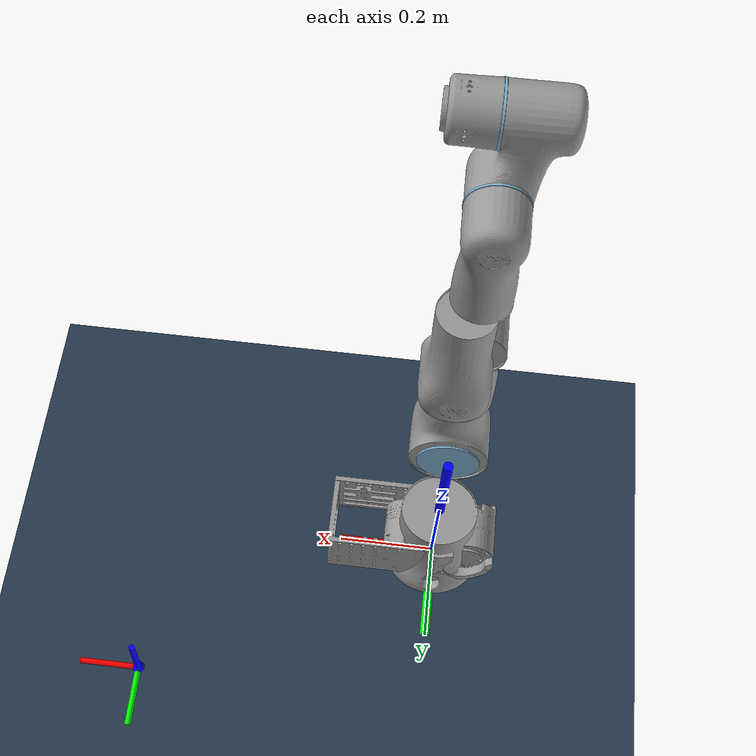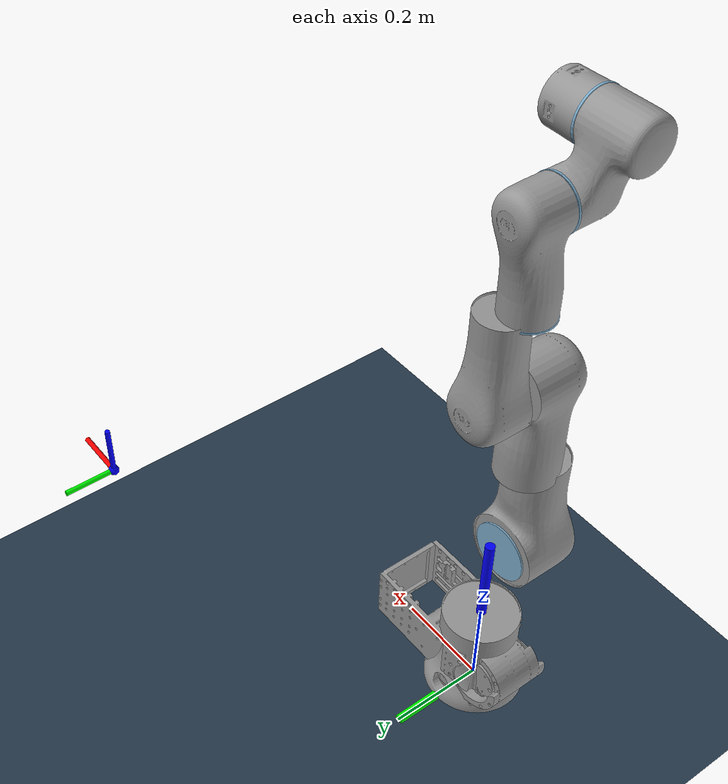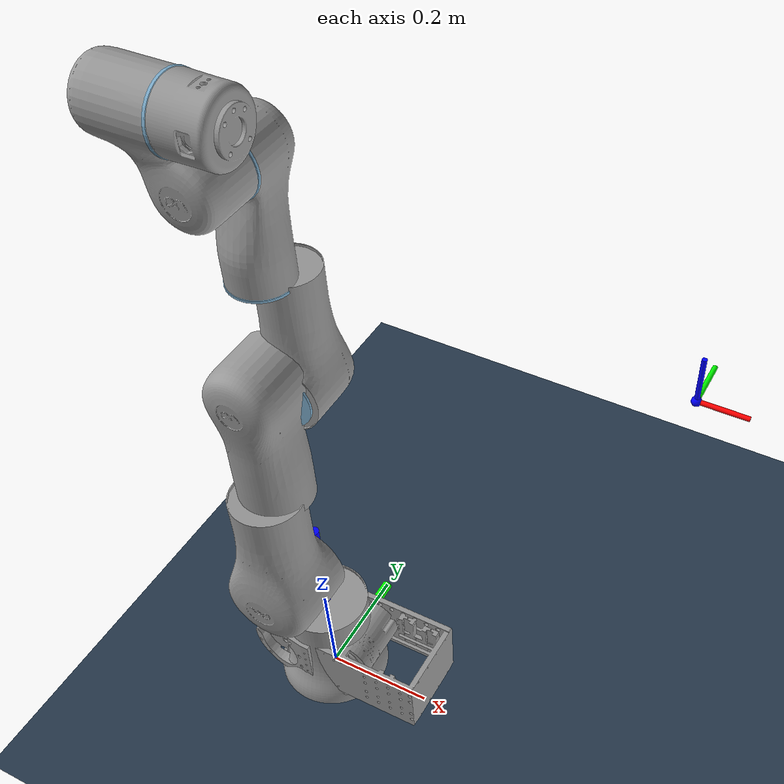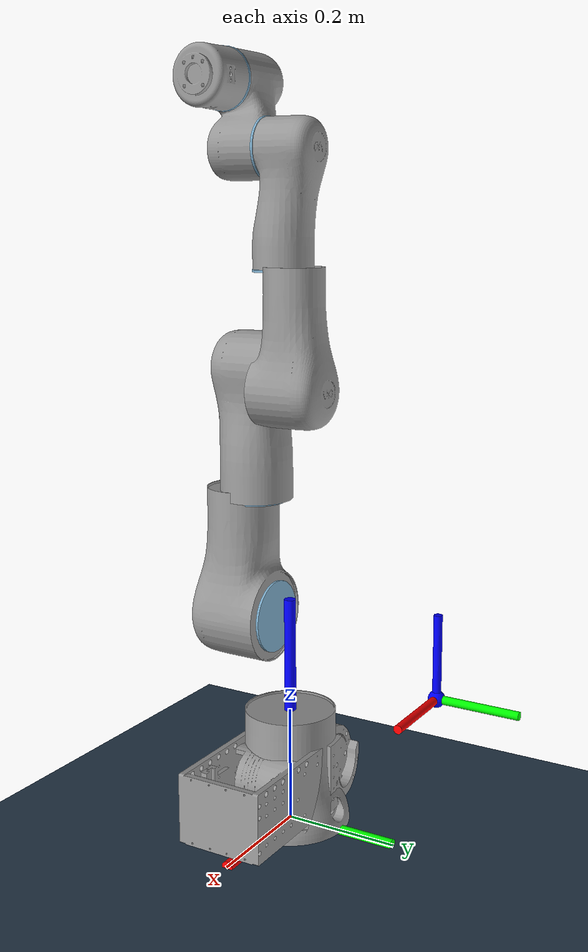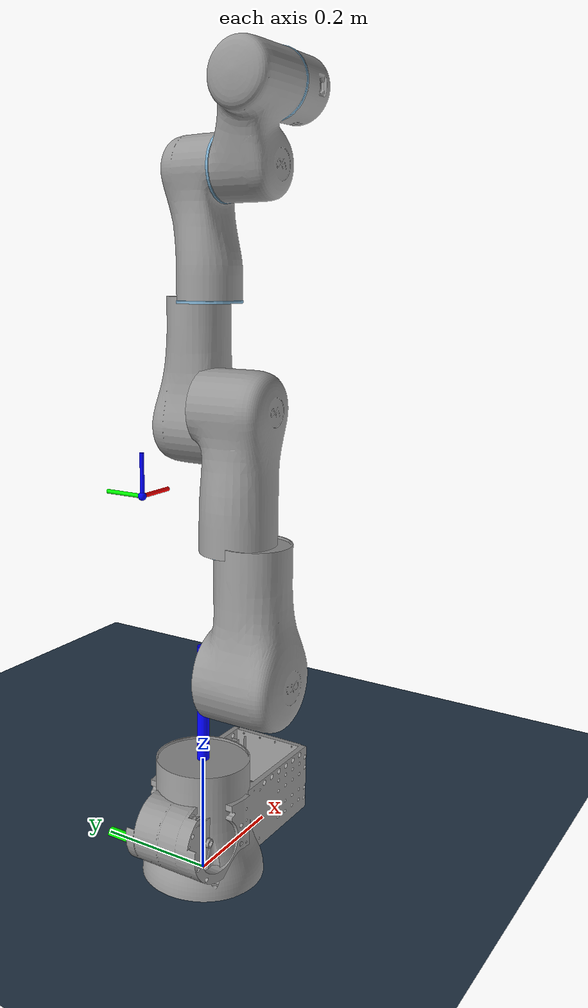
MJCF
<mujoco model="flexiv_rizon4s_scene">
  <include file="flexiv_Rizon4s.xml"/>

  <statistic center="0.3 0 0.3" extent="1.0" meansize="0.08"/>

  <visual>
    <headlight diffuse="0.6 0.6 0.6" ambient="0.1 0.1 0.1" specular="0 0 0"/>
    <global azimuth="120" elevation="-20"/>
  </visual>

  <asset>
    <texture name="grid" type="2d" builtin="checker" rgb1=".2 .3 .4" rgb2=".1 0.15 0.2" width="512" height="512"
      mark="cross" markrgb=".8 .8 .8"/>
    <material name="grid" texture="grid" texrepeat="1 1" texuniform="true"/>
  </asset>

  <worldbody>
    <light pos="0 0 1.5" directional="true"/>
    <geom name="floor" size="1 1 0.01" type="plane" material="grid"/>
    <body name="target" pos="0.5 0.5 .5" quat="1 0 0 0" mocap="true">
      <!-- X-axis arrow shaft -->
      <geom name="target_x_shaft" type="cylinder" size="0.005 0.05" pos="0.05 0 0" zaxis="1 0 0" rgba="1 0 0 1" contype="0" conaffinity="0" group="1"/>
      <!-- Y-axis arrow shaft -->
      <geom name="target_y_shaft" type="cylinder" size="0.005 0.05" pos="0 0.05 0" zaxis="0 1 0" rgba="0 1 0 1" contype="0" conaffinity="0" group="1"/>
      <!-- Z-axis arrow shaft -->
      <geom name="target_z_shaft" type="cylinder" size="0.005 0.05" pos="0 0 0.05" zaxis="0 0 1" rgba="0 0 1 1" contype="0" conaffinity="0" group="1"/>
      <site type="sphere" size="0.01" rgba="0 0 1 1" group="1"/>
    </body>
    <!-- X-axis arrow shaft -->
    <geom name="world_x_shaft" type="cylinder" size="0.01 0.1" pos="0.1 0 0.0" zaxis="1 0 0" rgba="1 0 0 1" contype="0" conaffinity="0" group="1"/>
    <!-- Y-axis arrow shaft -->
    <geom name="world_y_shaft" type="cylinder" size="0.01 0.1" pos="0 0.1 0.0" zaxis="0 1 0" rgba="0 1 0 1" contype="0" conaffinity="0" group="1"/>
    <!-- Z-axis arrow shaft -->
    <geom name="world_z_shaft" type="cylinder" size="0.01 0.2" pos="0 0 0.2" zaxis="0 0 1" rgba="0 0 1 1" contype="0" conaffinity="0" group="1"/>
  </worldbody>
</mujoco>

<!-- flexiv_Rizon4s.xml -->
<mujoco model="Rizon4s">
  <option iterations="50" timestep="0.001" solver="PGS" gravity="0 0 -9.81" />

  <compiler angle="radian" meshdir="meshes/Rizon4s" eulerseq="zyx" autolimits="true" />

  <default>
    <joint limited="true" damping="0.01" armature="0.01" frictionloss="0.01" />
    <geom condim="4" contype="1" conaffinity="15" friction="0.9 0.2 0.2" solref="0.001 2" />
    <motor ctrllimited="true" />
    <equality solref="0.001 2" />
    <default class="visualgeom">
      <geom material="visualgeom" condim="1" contype="0" conaffinity="0" />
    </default>
  </default>

  <asset>
    <mesh name="link0_visual" file="visual/link0.obj" />
    <mesh name="link1_visual" file="visual/link1.obj" />
    <mesh name="link2_visual" file="visual/link2.obj" />
    <mesh name="link3_visual" file="visual/link3.obj" />
    <mesh name="link4_visual" file="visual/link4.obj" />
    <mesh name="link5_visual" file="visual/link5.obj" />
    <mesh name="link6_visual" file="visual/link6.obj" />
    <mesh name="link7_visual" file="visual/link7.obj" />
    <mesh name="ring_visual_062" file="visual/ring.obj" scale="0.062 0.062 0.002" />
    <mesh name="ring_visual_051" file="visual/ring.obj" scale="0.051 0.051 0.002" />
    <mesh name="link0_collision" file="collision/link0.stl" />
    <mesh name="link1_collision" file="collision/link1.stl" />
    <mesh name="link2_collision" file="collision/link2.stl" />
    <mesh name="link3_collision" file="collision/link3.stl" />
    <mesh name="link4_collision" file="collision/link4.stl" />
    <mesh name="link5_collision" file="collision/link5.stl" />
    <mesh name="link6_collision" file="collision/link6.stl" />
    <mesh name="link7_collision" file="collision/link7.stl" />
    <texture name="texplane" type="2d" builtin="checker" rgb1=".0 .0 .0" rgb2=".8 .8 .8" width="100" height="100" />
    <material name="matplane" reflectance="0." texture="texplane" texrepeat="1 1" texuniform="true" />
    <material name="visualgeom" rgba="0.6 0.6 0.6 1"/>
    <material name="ring_material" rgba="0.49 0.678 0.8 1"/>
  </asset>

  <worldbody>
    <light directional="true" diffuse="0.4 0.4 0.4" specular="0.1 0.1 0.1" pos="0 0 5.0" dir="0 0 -1" castshadow="false" />
    <light directional="true" diffuse="0.6 0.6 0.6" specular="0.2 0.2 0.2" pos="0 0 4" dir="0 0 -1" />
    <camera name="fixed" pos="0 -3.0 0.517318010072385" xyaxes="1 0 0 0 0 1" />
    <body name="root" pos="0 0 0" quat="1 0 0 0">
      <site name="imu" size="0.01" pos="0 0 0" />
      <geom type="mesh" mesh="link0_visual" class="visualgeom" />
      <geom type="mesh" mesh="link0_collision" rgba="0 0 0 0" />
      <body name="link1" pos="0 0 0.155" quat="0 0 0 -1">
        <inertial pos="0 0 0.15" mass="3.6" diaginertia="0.03 0.03 0.01" />
        <joint name="joint1" pos="0 0 0" axis="0 0 1" range="-2.8798 2.8798" actuatorfrcrange="-123 123" />
        <geom type="mesh" mesh="link1_visual" class="visualgeom" />
        <geom type="mesh" mesh="ring_visual_062" class="visualgeom" pos="0 0 -0.0025" material="ring_material"/>
        <geom type="mesh" mesh="link1_collision" rgba="0 0 0 0" />
        <body name="link2" pos="0 0.03 0.21">
          <inertial pos="0 0.04 0.1" mass="2.7" diaginertia="0.02 0.02 0.01" />
          <joint name="joint2" pos="0 0 0" axis="0 1 0" range="-2.3562 2.3562" actuatorfrcrange="-123 123" />
          <geom type="mesh" mesh="link2_visual" class="visualgeom" />
          <geom type="mesh" mesh="ring_visual_062" class="visualgeom" pos="0 -0.0025 0" quat="0.7071068 0.7071068 0 0" material="ring_material"/>
          <geom type="mesh" mesh="link2_collision" rgba="0 0 0 0" />
          <body name="link3" pos="0 0.035 0.205">
            <inertial pos="-0.01 0 0.14" mass="2.4" diaginertia="0.01 0.01 0.01" />
            <joint name="joint3" pos="0 0 0" axis="0 0 1" range="-3.0543 3.0543" actuatorfrcrange="-64 64" />
            <geom type="mesh" mesh="link3_visual" class="visualgeom" />
            <geom type="mesh" mesh="ring_visual_051" class="visualgeom" pos="0 0 -0.0025" material="ring_material"/>
            <geom type="mesh" mesh="link3_collision" rgba="0 0 0 0" />
            <body name="link4" pos="-0.02 -0.03 0.19" quat="0 0 0 -1">
              <inertial pos="-0.01 0.03 0.1" mass="2.4" diaginertia="0.02 0.02 0.01" />
              <joint name="joint4" pos="0 0 0" axis="0 1 0" range="-1.9548 2.7751" actuatorfrcrange="-64 64" />
              <geom type="mesh" mesh="link4_visual" class="visualgeom" />
              <geom type="mesh" mesh="ring_visual_051" class="visualgeom" pos="0 -0.0025 0" quat="0.7071068 0.7071068 0 0" material="ring_material"/>
              <geom type="mesh" mesh="link4_collision" rgba="0 0 0 0" />
              <body name="link5" pos="-0.02 0.025 0.195" quat="0 0 0 -1">
                <inertial pos="0 0 0.14" mass="2.3" diaginertia="0.01 0.01 0.01" />
                <joint name="joint5" pos="0 0 0" axis="0 0 1" range="-3.0543 3.0543" actuatorfrcrange="-39 39" />
                <geom type="mesh" mesh="link5_visual" class="visualgeom" />
                <geom type="mesh" mesh="ring_visual_051" class="visualgeom" pos="0 0 -0.0025" material="ring_material"/>
                <geom type="mesh" mesh="link5_collision" rgba="0 0 0 0" />
                <body name="link6" pos="0 0.03 0.19">
                  <inertial pos="0.02 0.06 0.07" mass="2.2" diaginertia="0.01 0.01 0.01" />
                  <joint name="joint6" pos="0 0 0" axis="0 1 0" range="-1.4835 4.6251" actuatorfrcrange="-39 39" />
                  <geom type="mesh" mesh="link6_visual" class="visualgeom" />
                  <geom type="mesh" mesh="ring_visual_051" class="visualgeom" pos="0 -0.0025 0" quat="0.7071068 0.7071068 0 0" material="ring_material"/>
                  <geom type="mesh" mesh="link6_collision" rgba="0 0 0 0" />
                  <body name="link7" pos="-0.015 0.073 0.11" quat="0.707107 0 -0.707107 0">
                    <inertial pos="0 0 0.0505248" mass="1.41" diaginertia="0.0200544 0.0200544 0.02" />
                    <joint name="joint7" pos="0 0 0" axis="0 0 1" range="-3.0543 3.0543" actuatorfrcrange="-39 39" />
                    <geom type="mesh" mesh="link7_visual" class="visualgeom" />
                    <geom type="mesh" mesh="ring_visual_051" class="visualgeom" pos="0 0 -0.0025" material="ring_material"/>
                    <geom type="mesh" mesh="link7_collision" rgba="0 0 0 0" />
                    <body name="flange" pos="0 0 0.124" quat="0 0 0 -1">
                      <inertial mass="0.0" pos="0 0 0" diaginertia="0 0 0" />
                    </body>
                  </body>
                </body>
              </body>
            </body>
          </body>
        </body>
      </body>
    </body>
  </worldbody>

  <keyframe>
    <key name="home" qpos="0 0 0 0 0 0 0" />
  </keyframe>

  <actuator>
    <position name="joint1" joint="joint1" forcerange="-123 123" kp="2500" kv="100" ctrlrange="-2.8798 2.8798"/>
    <position name="joint2" joint="joint2" forcerange="-123 123" kp="2500" kv="100" ctrlrange="-2.3562 2.3562"/>
    <position name="joint3" joint="joint3" forcerange="-64 64" kp="2500" kv="100" ctrlrange="-3.0543 3.0543"/>
    <position name="joint4" joint="joint4" forcerange="-64 64" kp="2500" kv="100" ctrlrange="-1.9548 2.7751"/>
    <position name="joint5" joint="joint5" forcerange="-39 39" kp="500" kv="25" ctrlrange="-3.0543 3.0543"/>
    <position name="joint6" joint="joint6" forcerange="-39 39" kp="500" kv="25" ctrlrange="-1.4835 4.6251"/>
    <position name="joint7" joint="joint7" forcerange="-39 39" kp="500" kv="25" ctrlrange="-3.0543 3.0543"/>
  </actuator>

  <sensor>
    <actuatorpos name="joint1_p" actuator="joint1" />
    <actuatorvel name="joint1_v" actuator="joint1" />
    <actuatorfrc name="joint1_f" actuator="joint1" noise="0.001" />
    <actuatorpos name="joint2_p" actuator="joint2" />
    <actuatorvel name="joint2_v" actuator="joint2" />
    <actuatorfrc name="joint2_f" actuator="joint2" noise="0.001" />
    <actuatorpos name="joint3_p" actuator="joint3" />
    <actuatorvel name="joint3_v" actuator="joint3" />
    <actuatorfrc name="joint3_f" actuator="joint3" noise="0.001" />
    <actuatorpos name="joint4_p" actuator="joint4" />
    <actuatorvel name="joint4_v" actuator="joint4" />
    <actuatorfrc name="joint4_f" actuator="joint4" noise="0.001" />
    <actuatorpos name="joint5_p" actuator="joint5" />
    <actuatorvel name="joint5_v" actuator="joint5" />
    <actuatorfrc name="joint5_f" actuator="joint5" noise="0.001" />
    <actuatorpos name="joint6_p" actuator="joint6" />
    <actuatorvel name="joint6_v" actuator="joint6" />
    <actuatorfrc name="joint6_f" actuator="joint6" noise="0.001" />
    <actuatorpos name="joint7_p" actuator="joint7" />
    <actuatorvel name="joint7_v" actuator="joint7" />
    <actuatorfrc name="joint7_f" actuator="joint7" noise="0.001" />
    <framequat name="orientation" objtype="site" noise="0.001" objname="imu" />
    <gyro name="angular-velocity" site="imu" noise="0.005" cutoff="34.9" />
  </sensor>
</mujoco>
